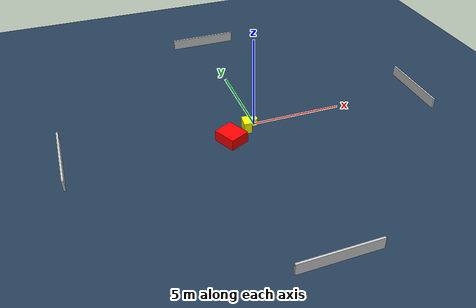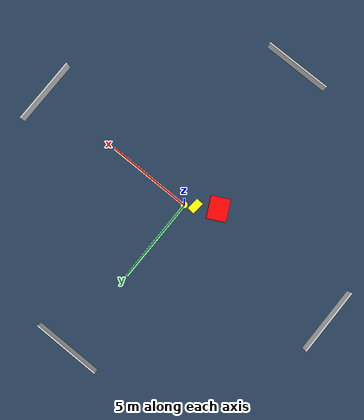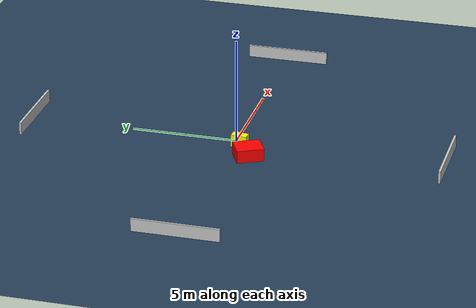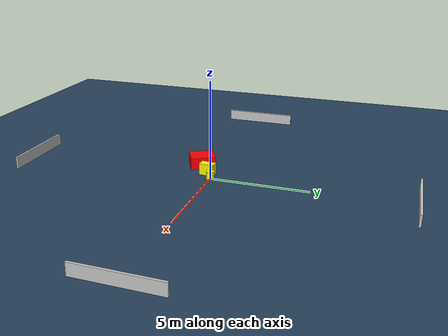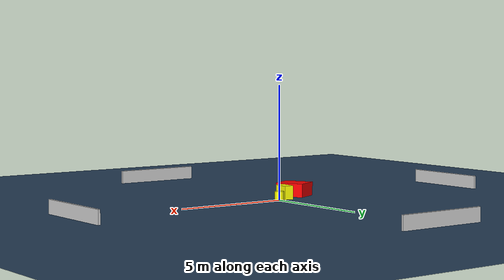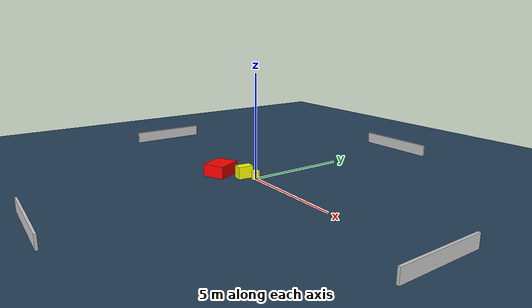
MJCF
<?xml version="1.0" ?>
<mujoco model="generated_environment">
  <option timestep="0.01" integrator="RK4" cone="elliptic"/>
  <default>
    <geom density="1"/>
  </default>
  <asset>
    <texture builtin="gradient" height="3072" name="skybox" rgb1="0.3 0.5 0.7" rgb2="0 0 0" type="skybox" width="512"/>
    <texture builtin="checker" height="300" name="groundplane" rgb1="0.2 0.3 0.4" rgb2="0.1 0.2 0.3" type="2d" width="300"/>
    <material name="groundplane" reflectance="0.2" texrepeat="5 5" texture="groundplane"/>
  </asset>
  <worldbody>
    <light dir="0 0 -1" directional="true" pos="0 0 1.5"/>
    <geom condim="3" friction="0.5 0.005 0.001" material="groundplane" name="floor" pos="0 0 0" size="0 0 0.05" type="plane"/>
    <body name="walls">
      <geom name="wall_1" condim="4" pos="-10.0 0.0 0.3" rgba="0.800000011920929 0.800000011920929 0.800000011920929 1.0" size="0.05 2.0 0.3" type="box"/>
      <geom name="wall_2" condim="4" pos="10.0 0.0 0.3" rgba="0.800000011920929 0.800000011920929 0.800000011920929 1.0" size="0.05 2.0 0.3" type="box"/>
      <geom name="wall_3" condim="4" pos="0.0 -10.0 0.3" rgba="0.800000011920929 0.800000011920929 0.800000011920929 1.0" size="2.0 0.05 0.3" type="box"/>
      <geom name="wall_4" condim="4" pos="0.0 10.0 0.3" rgba="0.800000011920929 0.800000011920929 0.800000011920929 1.0" size="2.0 0.05 0.3" type="box"/>
    </body>
    <body name="robot">
      <joint name="joint_x" type="slide" pos="0 0 0" axis="1 0 0"/>
      <joint name="joint_y" type="slide" pos="0 0 0" axis="0 1 0"/>
      <geom name="robot" type="cylinder" pos="0.0 0.0 0.2" size="0.2 0.2 0.0" mass="5.0" friction="1.0 0.005 0.0001" condim="4" rgba="1.0 1.0 0.0 1.0"/>
    </body>
    <body name="obstacle_1_movable">
      <geom name="obstacle_1_movable" condim="4" pos="-0.52486583477539 -0.315997263933664 0.3" euler="0 0 84.59439011773159" friction="0.0 0.005 0.001" rgba="1.0 1.0 0.0 1.0" size="0.3734140563640295 0.21355962258840508 0.3" type="box" mass="0.1"/>
      <joint type="free"/>
    </body>
    <body name="obstacle_2_static">
      <geom name="obstacle_2_static" condim="4" pos="-1.5931822051396363 -1.000548040194144 0.3" euler="0 0 26.42171517561044" friction="0.0 0.005 0.001" rgba="1.0 0.0 0.0 1.0" size="0.5475142026863805 0.6424342881965603 0.3" type="box"/>
    </body>
  </worldbody>
  <actuator>
    <motor name="actuator_x" joint="joint_x" gear="1" ctrlrange="-1 1"/>
    <motor name="actuator_y" joint="joint_y" gear="1" ctrlrange="-1 1"/>
  </actuator>
</mujoco>
